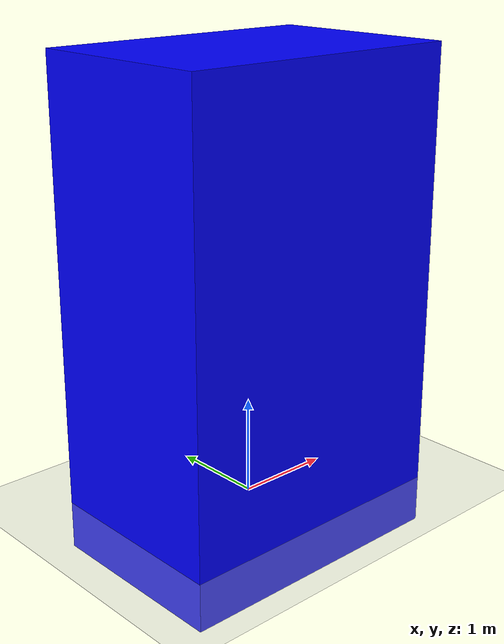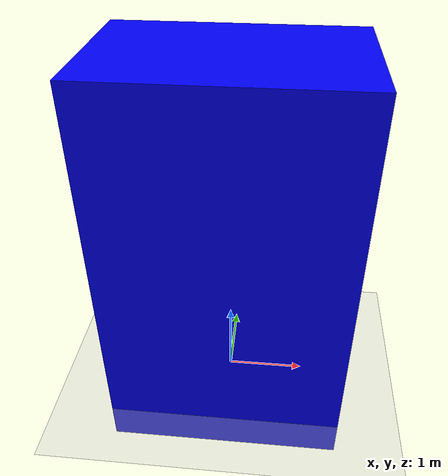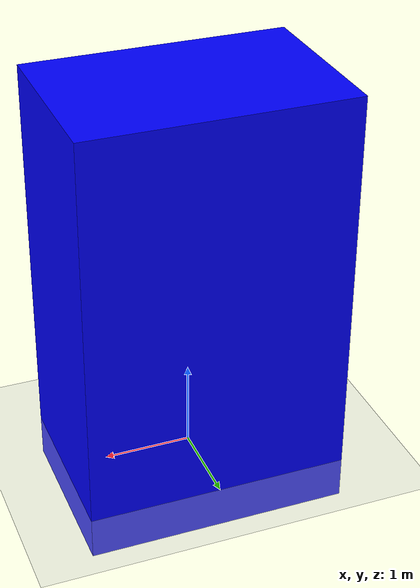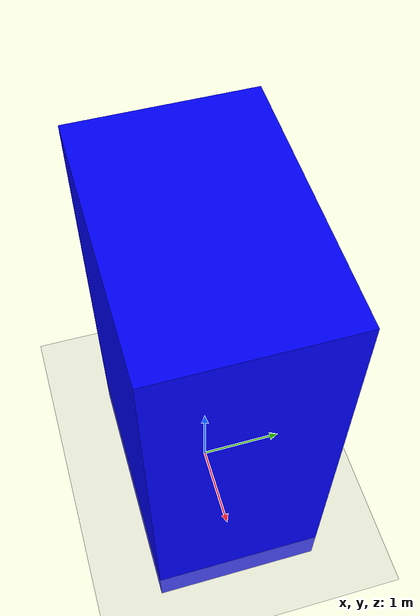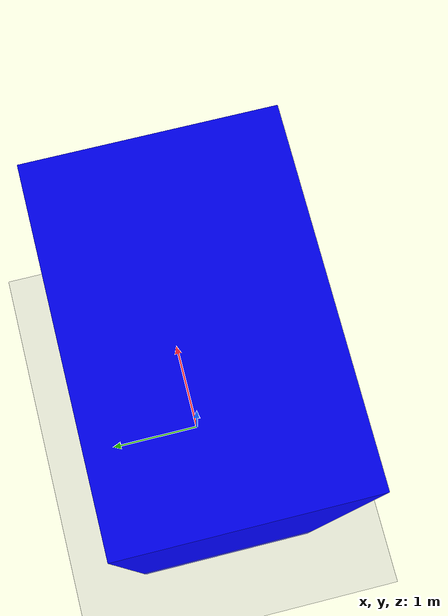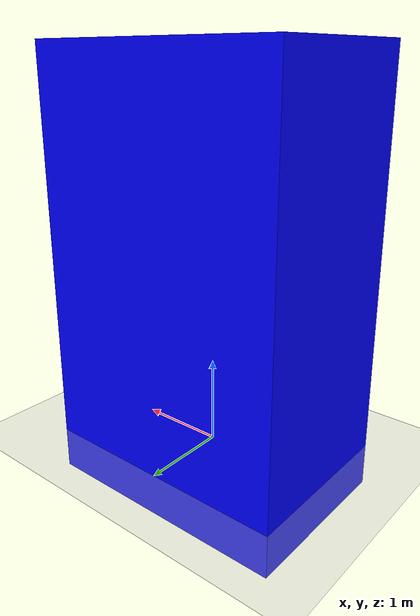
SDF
<?xml version="1.0"?>
<sdf version="1.6">
    <world name="default">
        <!-- A global light source -->
        <include>
            <uri>model://sun</uri>
        </include>
        <!-- A ground plane -->
        <include>
            <uri>model://ground_plane</uri>
        </include>

        <include>
            <uri>model://my1stmodel</uri>
            <pose>0 0 2 0 0 0</pose>
        </include>
    </world>
</sdf>

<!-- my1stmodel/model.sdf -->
<sdf version="1.5">
  <model name="my1stmodel">
    <static>false</static>
    <link name="link">
      <collision name="collision">
        <geometry>
          <box>
            <size>3 2 5</size>
          </box>
        </geometry>
        <surface>
          <friction>
            <ode>
              <mu>100</mu>
              <mu2>50</mu2>
            </ode>
          </friction>
        </surface>
      </collision>
      <visual name="visual">
        <geometry>
          <box>
            <size>3 2 5</size>
          </box>
        </geometry>
        <material>
          <ambient>0.0 0.0 1.0 1</ambient>
          <diffuse>0.0 0.0 1.0 1</diffuse>
          <specular>0.0 0.0 1.0 1</specular>
        </material>
      </visual>
    </link>
  </model>
</sdf>
